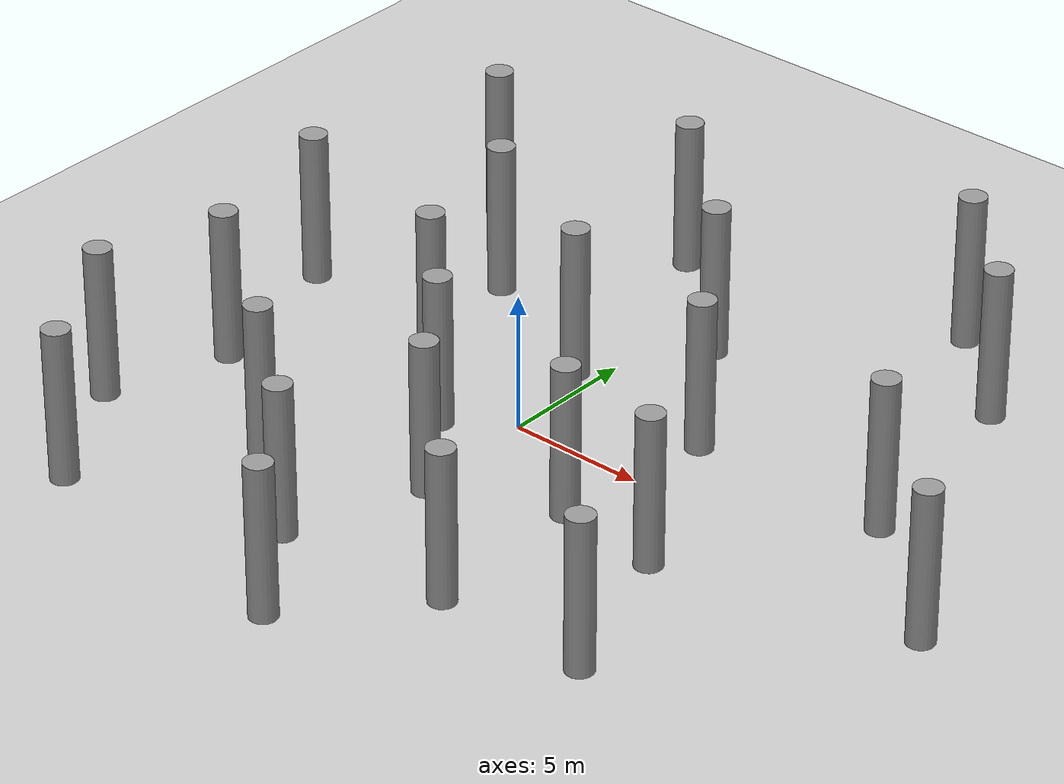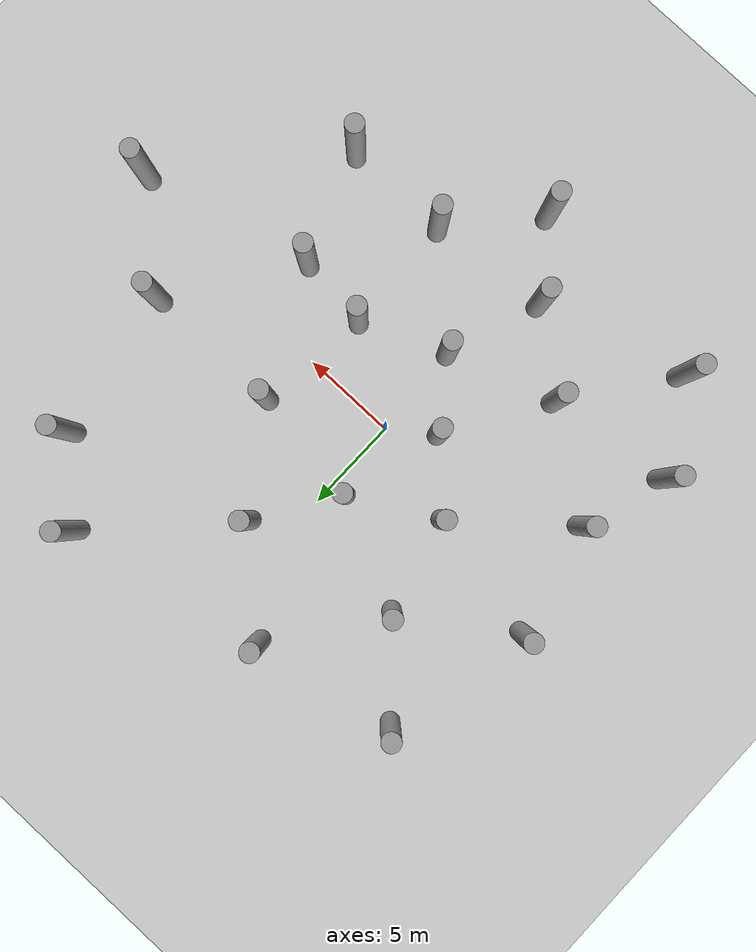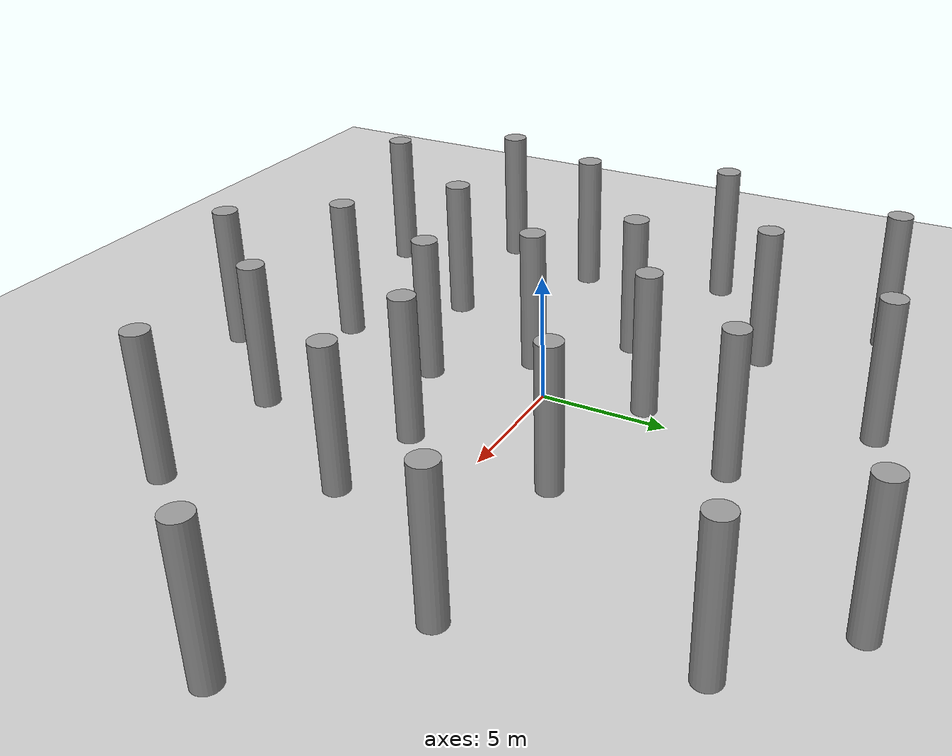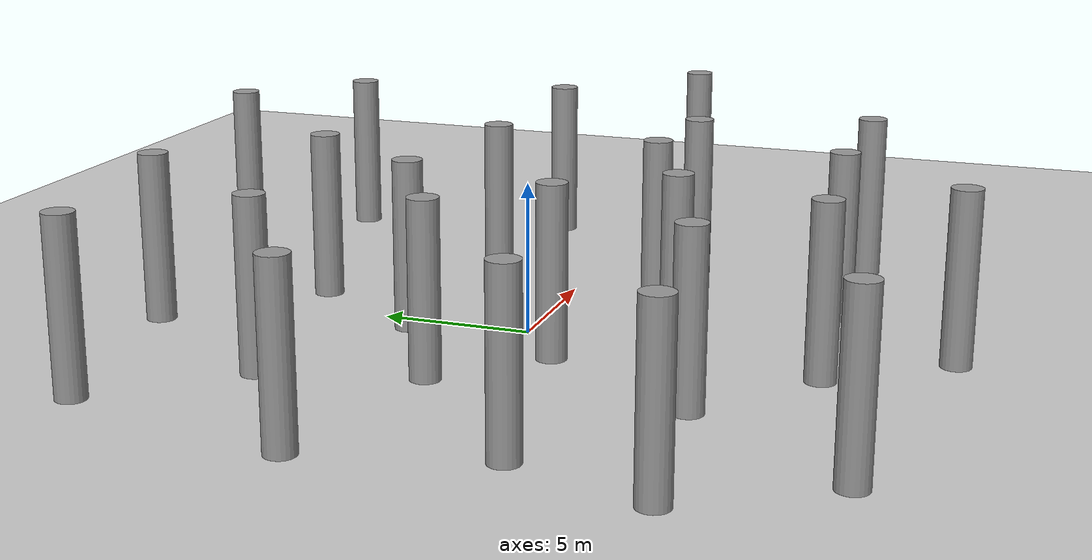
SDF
<sdf version="1.7">
 <world name="default">
  <light name="sun" type="directional">
   <pose>0 0 10 0 -0 0</pose>
   <diffuse>0.8 0.8 0.8 1</diffuse>
   <specular>0.2 0.2 0.2 1</specular>
   <attenuation>
    <range>1000</range>
    <constant>0.9</constant>
    <linear>0.01</linear>
    <quadratic>0.001</quadratic>
   </attenuation>
   <direction>-0.5 0.1 -0.9</direction>
   <spot><inner_angle>0</inner_angle><outer_angle>0</outer_angle><falloff>0</falloff></spot>
  </light>
  <model name="ground_plane">
   <static>1</static>
   <link name="link">
    <collision name="collision">
     <geometry><plane><normal>0 0 1</normal><size>100 100</size></plane></geometry>
     <surface>
      <contact><collide_bitmask>65535</collide_bitmask></contact>
      <friction><ode><mu>100</mu><mu2>50</mu2></ode></friction>
     </surface>
    </collision>
    <visual name="visual">
     <cast_shadows>0</cast_shadows>
     <geometry><plane><normal>0 0 1</normal><size>100 100</size></plane></geometry>
     <material>
      <script><uri>file://media/materials/scripts/gazebo.material</uri><name>Gazebo/Grey</name></script>
     </material>
    </visual>
   </link>
  </model>
  <gravity>0 0 -9.8</gravity>
  <magnetic_field>6e-06 2.3e-05 -4.2e-05</magnetic_field>
  <atmosphere type="adiabatic"/>
  <physics type="ode">
   <max_step_size>0.001</max_step_size>
   <real_time_factor>1</real_time_factor>
   <real_time_update_rate>1000</real_time_update_rate>
  </physics>
  <scene><ambient>0.4 0.4 0.4 1</ambient><background>0.7 0.7 0.7 1</background><shadows>1</shadows></scene>
  <spherical_coordinates>
   <surface_model>EARTH_WGS84</surface_model>
   <latitude_deg>0</latitude_deg>
   <longitude_deg>0</longitude_deg>
   <elevation>0</elevation>
   <heading_deg>0</heading_deg>
  </spherical_coordinates>
  <model name="unit_cylinder">
   <pose>-5.17003 1.4638 2.83636 0 -0 0.002454</pose>
   <link name="link">
    <inertial>
     <mass>1</mass>
     <inertia><ixx>0.145833</ixx><ixy>0</ixy><ixz>0</ixz><iyy>0.145833</iyy><iyz>0</iyz><izz>0.125</izz></inertia>
    </inertial>
    <collision name="collision">
     <geometry><cylinder><radius>0.5</radius><length>5.67273</length></cylinder></geometry>
    </collision>
    <visual name="visual">
     <geometry><cylinder><radius>0.5</radius><length>5.67273</length></cylinder></geometry>
     <material>
      <script><name>Gazebo/Grey</name><uri>file://media/materials/scripts/gazebo.material</uri></script>
     </material>
    </visual>
   </link>
  </model>
  <model name="unit_cylinder_clone">
   <pose>-5.29916 -6.69666 2.83636 0 -0 0.002345</pose>
   <link name="link">
    <inertial>
     <mass>1</mass>
     <inertia><ixx>0.145833</ixx><ixy>0</ixy><ixz>0</ixz><iyy>0.145833</iyy><iyz>0</iyz><izz>0.125</izz></inertia>
    </inertial>
    <collision name="collision">
     <geometry><cylinder><radius>0.5</radius><length>5.67273</length></cylinder></geometry>
    </collision>
    <visual name="visual">
     <geometry><cylinder><radius>0.5</radius><length>5.67273</length></cylinder></geometry>
     <material>
      <script><name>Gazebo/Grey</name><uri>file://media/materials/scripts/gazebo.material</uri></script>
     </material>
    </visual>
   </link>
  </model>
  <model name="unit_cylinder_clone_0">
   <pose>1.81974 7.98671 2.83636 0 -0 0.002414</pose>
   <link name="link">
    <inertial>
     <mass>1</mass>
     <inertia><ixx>0.145833</ixx><ixy>0</ixy><ixz>0</ixz><iyy>0.145833</iyy><iyz>0</iyz><izz>0.125</izz></inertia>
    </inertial>
    <collision name="collision">
     <geometry><cylinder><radius>0.5</radius><length>5.67273</length></cylinder></geometry>
    </collision>
    <visual name="visual">
     <geometry><cylinder><radius>0.5</radius><length>5.67273</length></cylinder></geometry>
     <material>
      <script><name>Gazebo/Grey</name><uri>file://media/materials/scripts/gazebo.material</uri></script>
     </material>
    </visual>
   </link>
  </model>
  <model name="unit_cylinder_clone_1">
   <pose>-0.811738 3.81975 2.83636 0 -0 0.002274</pose>
   <link name="link">
    <inertial>
     <mass>1</mass>
     <inertia><ixx>0.145833</ixx><ixy>0</ixy><ixz>0</ixz><iyy>0.145833</iyy><iyz>0</iyz><izz>0.125</izz></inertia>
    </inertial>
    <collision name="collision">
     <geometry><cylinder><radius>0.5</radius><length>5.67273</length></cylinder></geometry>
    </collision>
    <visual name="visual">
     <geometry><cylinder><radius>0.5</radius><length>5.67273</length></cylinder></geometry>
     <material>
      <script><name>Gazebo/Grey</name><uri>file://media/materials/scripts/gazebo.material</uri></script>
     </material>
    </visual>
   </link>
  </model>
  <model name="unit_cylinder_clone_2">
   <pose>5.31539 2.95634 2.83636 0 -0 0.002353</pose>
   <link name="link">
    <inertial>
     <mass>1</mass>
     <inertia><ixx>0.145833</ixx><ixy>0</ixy><ixz>0</ixz><iyy>0.145833</iyy><iyz>0</iyz><izz>0.125</izz></inertia>
    </inertial>
    <collision name="collision">
     <geometry><cylinder><radius>0.5</radius><length>5.67273</length></cylinder></geometry>
    </collision>
    <visual name="visual">
     <geometry><cylinder><radius>0.5</radius><length>5.67273</length></cylinder></geometry>
     <material>
      <script><name>Gazebo/Grey</name><uri>file://media/materials/scripts/gazebo.material</uri></script>
     </material>
    </visual>
   </link>
  </model>
  <model name="unit_cylinder_clone_3">
   <pose>0.260159 -4.85117 2.83636 0 -0 0.002175</pose>
   <link name="link">
    <inertial>
     <mass>1</mass>
     <inertia><ixx>0.145833</ixx><ixy>0</ixy><ixz>0</ixz><iyy>0.145833</iyy><iyz>0</iyz><izz>0.125</izz></inertia>
    </inertial>
    <collision name="collision">
     <geometry><cylinder><radius>0.5</radius><length>5.67273</length></cylinder></geometry>
    </collision>
    <visual name="visual">
     <geometry><cylinder><radius>0.5</radius><length>5.67273</length></cylinder></geometry>
     <material>
      <script><name>Gazebo/Grey</name><uri>file://media/materials/scripts/gazebo.material</uri></script>
     </material>
    </visual>
   </link>
  </model>
  <model name="unit_cylinder_clone_4">
   <pose>4.92998 -9.24059 2.83636 0 -0 0.002207</pose>
   <link name="link">
    <inertial>
     <mass>1</mass>
     <inertia><ixx>0.145833</ixx><ixy>0</ixy><ixz>0</ixz><iyy>0.145833</iyy><iyz>0</iyz><izz>0.125</izz></inertia>
    </inertial>
    <collision name="collision">
     <geometry><cylinder><radius>0.5</radius><length>5.67273</length></cylinder></geometry>
    </collision>
    <visual name="visual">
     <geometry><cylinder><radius>0.5</radius><length>5.67273</length></cylinder></geometry>
     <material>
      <script><name>Gazebo/Grey</name><uri>file://media/materials/scripts/gazebo.material</uri></script>
     </material>
    </visual>
   </link>
  </model>
  <model name="unit_cylinder_clone_5">
   <pose>4.63173 -3.0121 2.83636 0 -0 0.002168</pose>
   <link name="link">
    <inertial>
     <mass>1</mass>
     <inertia><ixx>0.145833</ixx><ixy>0</ixy><ixz>0</ixz><iyy>0.145833</iyy><iyz>0</iyz><izz>0.125</izz></inertia>
    </inertial>
    <collision name="collision">
     <geometry><cylinder><radius>0.5</radius><length>5.67273</length></cylinder></geometry>
    </collision>
    <visual name="visual">
     <geometry><cylinder><radius>0.5</radius><length>5.67273</length></cylinder></geometry>
     <material>
      <script><name>Gazebo/Grey</name><uri>file://media/materials/scripts/gazebo.material</uri></script>
     </material>
    </visual>
   </link>
  </model>
  <model name="unit_cylinder_clone_6">
   <pose>8.49975 -3.47046 2.83636 0 -0 0.002066</pose>
   <link name="link">
    <inertial>
     <mass>1</mass>
     <inertia><ixx>0.145833</ixx><ixy>0</ixy><ixz>0</ixz><iyy>0.145833</iyy><iyz>0</iyz><izz>0.125</izz></inertia>
    </inertial>
    <collision name="collision">
     <geometry><cylinder><radius>0.5</radius><length>5.67273</length></cylinder></geometry>
    </collision>
    <visual name="visual">
     <geometry><cylinder><radius>0.5</radius><length>5.67273</length></cylinder></geometry>
     <material>
      <script><name>Gazebo/Grey</name><uri>file://media/materials/scripts/gazebo.material</uri></script>
     </material>
    </visual>
   </link>
  </model>
  <model name="unit_cylinder_clone_7">
   <pose>-6.44843 6.49267 2.83636 0 -0 0.002034</pose>
   <link name="link">
    <inertial>
     <mass>1</mass>
     <inertia><ixx>0.145833</ixx><ixy>0</ixy><ixz>0</ixz><iyy>0.145833</iyy><iyz>0</iyz><izz>0.125</izz></inertia>
    </inertial>
    <collision name="collision">
     <geometry><cylinder><radius>0.5</radius><length>5.67273</length></cylinder></geometry>
    </collision>
    <visual name="visual">
     <geometry><cylinder><radius>0.5</radius><length>5.67273</length></cylinder></geometry>
     <material>
      <script><name>Gazebo/Grey</name><uri>file://media/materials/scripts/gazebo.material</uri></script>
     </material>
    </visual>
   </link>
  </model>
  <model name="unit_cylinder_clone_8">
   <pose>-2.16092 -1.53061 2.83636 0 -0 0.002243</pose>
   <link name="link">
    <inertial>
     <mass>1</mass>
     <inertia><ixx>0.145833</ixx><ixy>0</ixy><ixz>0</ixz><iyy>0.145833</iyy><iyz>0</iyz><izz>0.125</izz></inertia>
    </inertial>
    <collision name="collision">
     <geometry><cylinder><radius>0.5</radius><length>5.67273</length></cylinder></geometry>
    </collision>
    <visual name="visual">
     <geometry><cylinder><radius>0.5</radius><length>5.67273</length></cylinder></geometry>
     <material>
      <script><name>Gazebo/Grey</name><uri>file://media/materials/scripts/gazebo.material</uri></script>
     </material>
    </visual>
   </link>
  </model>
  <model name="unit_cylinder_clone_9">
   <pose>-10.4499 -2.99996 2.83636 0 -0 0.002232</pose>
   <link name="link">
    <inertial>
     <mass>1</mass>
     <inertia><ixx>0.145833</ixx><ixy>0</ixy><ixz>0</ixz><iyy>0.145833</iyy><iyz>0</iyz><izz>0.125</izz></inertia>
    </inertial>
    <collision name="collision">
     <geometry><cylinder><radius>0.5</radius><length>5.67273</length></cylinder></geometry>
    </collision>
    <visual name="visual">
     <geometry><cylinder><radius>0.5</radius><length>5.67273</length></cylinder></geometry>
     <material>
      <script><name>Gazebo/Grey</name><uri>file://media/materials/scripts/gazebo.material</uri></script>
     </material>
    </visual>
   </link>
  </model>
  <model name="unit_cylinder_clone_10">
   <pose>-11.8942 2.89845 2.83636 0 -0 0.00243</pose>
   <link name="link">
    <inertial>
     <mass>1</mass>
     <inertia><ixx>0.145833</ixx><ixy>0</ixy><ixz>0</ixz><iyy>0.145833</iyy><iyz>0</iyz><izz>0.125</izz></inertia>
    </inertial>
    <collision name="collision">
     <geometry><cylinder><radius>0.5</radius><length>5.67273</length></cylinder></geometry>
    </collision>
    <visual name="visual">
     <geometry><cylinder><radius>0.5</radius><length>5.67273</length></cylinder></geometry>
     <material>
      <script><name>Gazebo/Grey</name><uri>file://media/materials/scripts/gazebo.material</uri></script>
     </material>
    </visual>
   </link>
  </model>
  <model name="unit_cylinder_clone_11">
   <pose>11.39 10.8221 2.83636 0 -0 0.002292</pose>
   <link name="link">
    <inertial>
     <mass>1</mass>
     <inertia><ixx>0.145833</ixx><ixy>0</ixy><ixz>0</ixz><iyy>0.145833</iyy><iyz>0</iyz><izz>0.125</izz></inertia>
    </inertial>
    <collision name="collision">
     <geometry><cylinder><radius>0.5</radius><length>5.67273</length></cylinder></geometry>
    </collision>
    <visual name="visual">
     <geometry><cylinder><radius>0.5</radius><length>5.67273</length></cylinder></geometry>
     <material>
      <script><name>Gazebo/Grey</name><uri>file://media/materials/scripts/gazebo.material</uri></script>
     </material>
    </visual>
   </link>
  </model>
  <model name="unit_cylinder_clone_12">
   <pose>12.7526 2.96646 2.83636 0 -0 0.002317</pose>
   <link name="link">
    <inertial>
     <mass>1</mass>
     <inertia><ixx>0.145833</ixx><ixy>0</ixy><ixz>0</ixz><iyy>0.145833</iyy><iyz>0</iyz><izz>0.125</izz></inertia>
    </inertial>
    <collision name="collision">
     <geometry><cylinder><radius>0.5</radius><length>5.67273</length></cylinder></geometry>
    </collision>
    <visual name="visual">
     <geometry><cylinder><radius>0.5</radius><length>5.67273</length></cylinder></geometry>
     <material>
      <script><name>Gazebo/Grey</name><uri>file://media/materials/scripts/gazebo.material</uri></script>
     </material>
    </visual>
   </link>
  </model>
  <model name="unit_cylinder_clone_13">
   <pose>-11.8496 -7.49399 2.83636 0 -0 0.002375</pose>
   <link name="link">
    <inertial>
     <mass>1</mass>
     <inertia><ixx>0.145833</ixx><ixy>0</ixy><ixz>0</ixz><iyy>0.145833</iyy><iyz>0</iyz><izz>0.125</izz></inertia>
    </inertial>
    <collision name="collision">
     <geometry><cylinder><radius>0.5</radius><length>5.67273</length></cylinder></geometry>
    </collision>
    <visual name="visual">
     <geometry><cylinder><radius>0.5</radius><length>5.67273</length></cylinder></geometry>
     <material>
      <script><name>Gazebo/Grey</name><uri>file://media/materials/scripts/gazebo.material</uri></script>
     </material>
    </visual>
   </link>
  </model>
  <model name="unit_cylinder_clone_14">
   <pose>-1.43341 -9.80762 2.83636 0 -0 0.00232</pose>
   <link name="link">
    <inertial>
     <mass>1</mass>
     <inertia><ixx>0.145833</ixx><ixy>0</ixy><ixz>0</ixz><iyy>0.145833</iyy><iyz>0</iyz><izz>0.125</izz></inertia>
    </inertial>
    <collision name="collision">
     <geometry><cylinder><radius>0.5</radius><length>5.67273</length></cylinder></geometry>
    </collision>
    <visual name="visual">
     <geometry><cylinder><radius>0.5</radius><length>5.67273</length></cylinder></geometry>
     <material>
      <script><name>Gazebo/Grey</name><uri>file://media/materials/scripts/gazebo.material</uri></script>
     </material>
    </visual>
   </link>
  </model>
  <model name="unit_cylinder_clone_15">
   <pose>-9.10721 -12.0281 2.83636 0 -0 0.002273</pose>
   <link name="link">
    <inertial>
     <mass>1</mass>
     <inertia><ixx>0.145833</ixx><ixy>0</ixy><ixz>0</ixz><iyy>0.145833</iyy><iyz>0</iyz><izz>0.125</izz></inertia>
    </inertial>
    <collision name="collision">
     <geometry><cylinder><radius>0.5</radius><length>5.67273</length></cylinder></geometry>
    </collision>
    <visual name="visual">
     <geometry><cylinder><radius>0.5</radius><length>5.67273</length></cylinder></geometry>
     <material>
      <script><name>Gazebo/Grey</name><uri>file://media/materials/scripts/gazebo.material</uri></script>
     </material>
    </visual>
   </link>
  </model>
  <model name="unit_cylinder_clone_16">
   <pose>1.28519 -13.4993 2.83636 0 -0 0.002354</pose>
   <link name="link">
    <inertial>
     <mass>1</mass>
     <inertia><ixx>0.145833</ixx><ixy>0</ixy><ixz>0</ixz><iyy>0.145833</iyy><iyz>0</iyz><izz>0.125</izz></inertia>
    </inertial>
    <collision name="collision">
     <geometry><cylinder><radius>0.5</radius><length>5.67273</length></cylinder></geometry>
    </collision>
    <visual name="visual">
     <geometry><cylinder><radius>0.5</radius><length>5.67273</length></cylinder></geometry>
     <material>
      <script><name>Gazebo/Grey</name><uri>file://media/materials/scripts/gazebo.material</uri></script>
     </material>
    </visual>
   </link>
  </model>
  <model name="unit_cylinder_clone_17">
   <pose>10.5982 -9.27564 2.83636 0 -0 0.002391</pose>
   <link name="link">
    <inertial>
     <mass>1</mass>
     <inertia><ixx>0.145833</ixx><ixy>0</ixy><ixz>0</ixz><iyy>0.145833</iyy><iyz>0</iyz><izz>0.125</izz></inertia>
    </inertial>
    <collision name="collision">
     <geometry><cylinder><radius>0.5</radius><length>5.67273</length></cylinder></geometry>
    </collision>
    <visual name="visual">
     <geometry><cylinder><radius>0.5</radius><length>5.67273</length></cylinder></geometry>
     <material>
      <script><name>Gazebo/Grey</name><uri>file://media/materials/scripts/gazebo.material</uri></script>
     </material>
    </visual>
   </link>
  </model>
  <model name="unit_cylinder_clone_18">
   <pose>17.5399 -1.23199 2.83636 0 -0 0.00229</pose>
   <link name="link">
    <inertial>
     <mass>1</mass>
     <inertia><ixx>0.145833</ixx><ixy>0</ixy><ixz>0</ixz><iyy>0.145833</iyy><iyz>0</iyz><izz>0.125</izz></inertia>
    </inertial>
    <collision name="collision">
     <geometry><cylinder><radius>0.5</radius><length>5.67273</length></cylinder></geometry>
    </collision>
    <visual name="visual">
     <geometry><cylinder><radius>0.5</radius><length>5.67273</length></cylinder></geometry>
     <material>
      <script><name>Gazebo/Grey</name><uri>file://media/materials/scripts/gazebo.material</uri></script>
     </material>
    </visual>
   </link>
  </model>
  <model name="unit_cylinder_clone_19">
   <pose>7.83905 14.2322 2.83636 0 -0 0.002282</pose>
   <link name="link">
    <inertial>
     <mass>1</mass>
     <inertia><ixx>0.145833</ixx><ixy>0</ixy><ixz>0</ixz><iyy>0.145833</iyy><iyz>0</iyz><izz>0.125</izz></inertia>
    </inertial>
    <collision name="collision">
     <geometry><cylinder><radius>0.5</radius><length>5.67273</length></cylinder></geometry>
    </collision>
    <visual name="visual">
     <geometry><cylinder><radius>0.5</radius><length>5.67273</length></cylinder></geometry>
     <material>
      <script><name>Gazebo/Grey</name><uri>file://media/materials/scripts/gazebo.material</uri></script>
     </material>
    </visual>
   </link>
  </model>
  <model name="unit_cylinder_clone_20">
   <pose>-2.64173 12.0317 2.83636 0 -0 0.002306</pose>
   <link name="link">
    <inertial>
     <mass>1</mass>
     <inertia><ixx>0.145833</ixx><ixy>0</ixy><ixz>0</ixz><iyy>0.145833</iyy><iyz>0</iyz><izz>0.125</izz></inertia>
    </inertial>
    <collision name="collision">
     <geometry><cylinder><radius>0.5</radius><length>5.67273</length></cylinder></geometry>
    </collision>
    <visual name="visual">
     <geometry><cylinder><radius>0.5</radius><length>5.67273</length></cylinder></geometry>
     <material>
      <script><name>Gazebo/Grey</name><uri>file://media/materials/scripts/gazebo.material</uri></script>
     </material>
    </visual>
   </link>
  </model>
  <model name="unit_cylinder_clone_21">
   <pose>-10.1512 10.6012 2.83636 0 -0 0.002376</pose>
   <link name="link">
    <inertial>
     <mass>1</mass>
     <inertia><ixx>0.145833</ixx><ixy>0</ixy><ixz>0</ixz><iyy>0.145833</iyy><iyz>0</iyz><izz>0.125</izz></inertia>
    </inertial>
    <collision name="collision">
     <geometry><cylinder><radius>0.5</radius><length>5.67273</length></cylinder></geometry>
    </collision>
    <visual name="visual">
     <geometry><cylinder><radius>0.5</radius><length>5.67273</length></cylinder></geometry>
     <material>
      <script><name>Gazebo/Grey</name><uri>file://media/materials/scripts/gazebo.material</uri></script>
     </material>
    </visual>
   </link>
  </model>
 </world>
</sdf>
